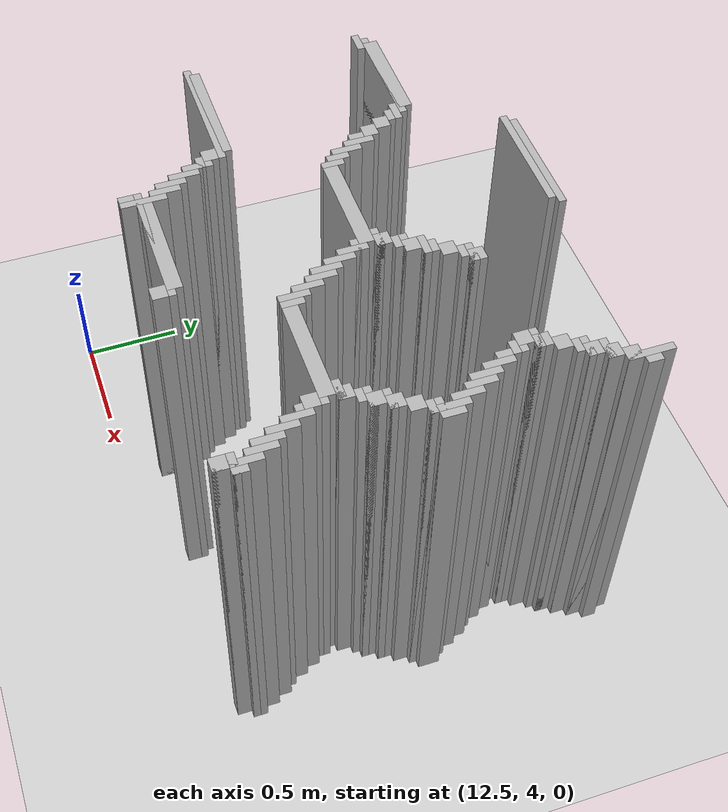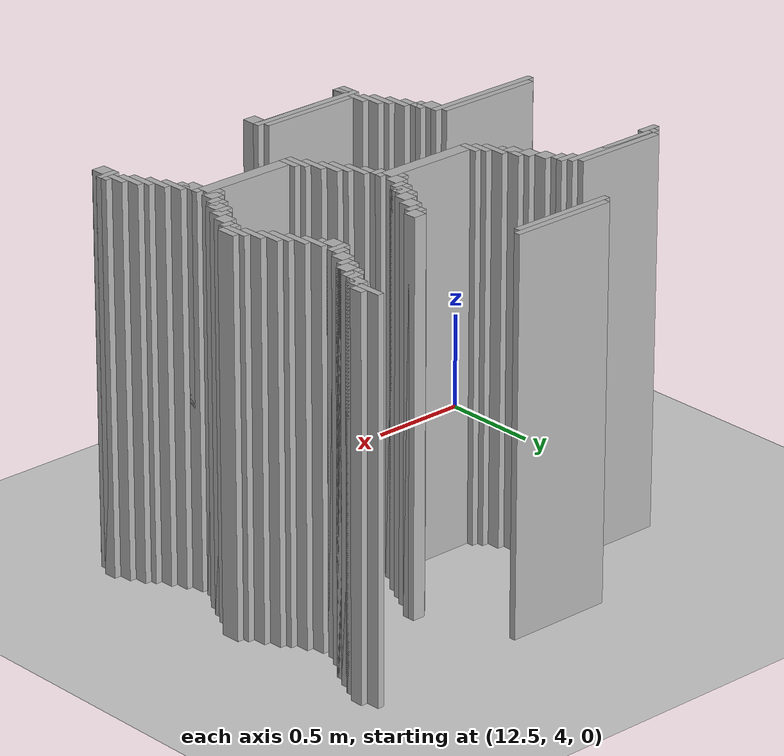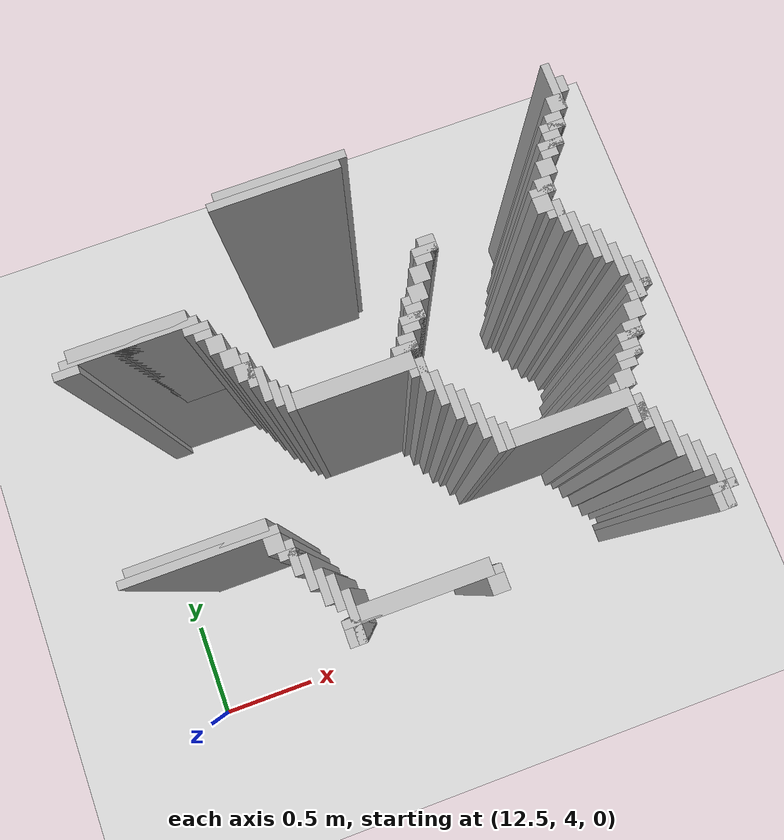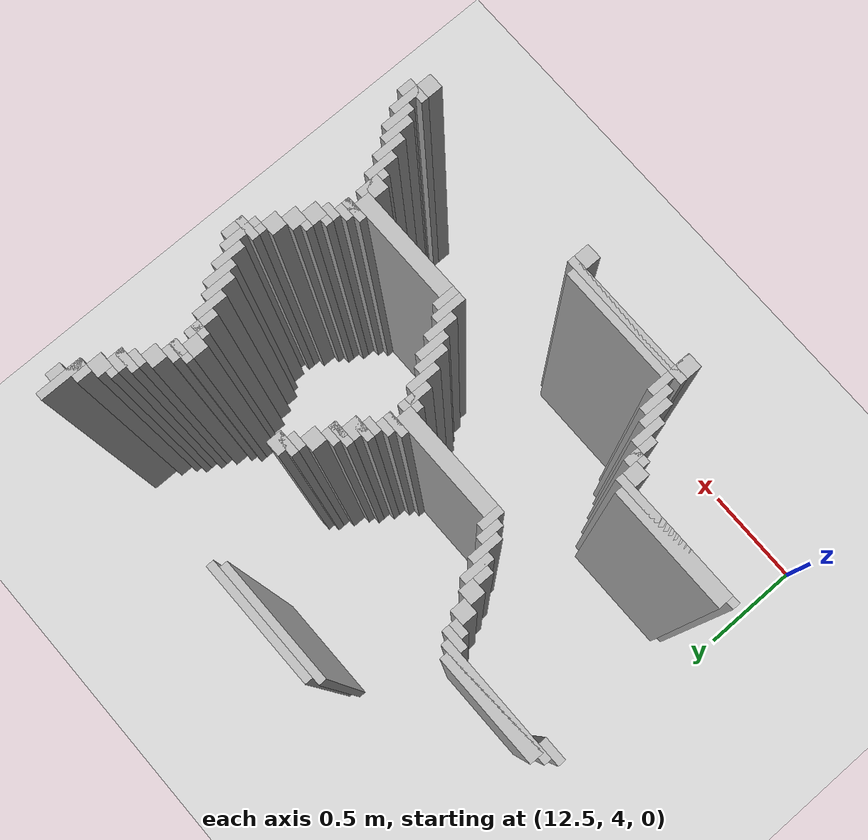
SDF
<sdf version="1.6">
 <world name="slam_world">
  <model name="ground_plane">
   <static>true</static>
   <link name="link">
    <collision name="collision">
     <geometry><plane><normal>0 0 1</normal><size>100 100</size></plane></geometry>
    </collision>
    <visual name="visual">
     <geometry><plane><normal>0 0 1</normal><size>100 100</size></plane></geometry>
     <material>
      <ambient>0.8 0.8 0.8 1</ambient>
      <diffuse>0.8 0.8 0.8 1</diffuse>
      <specular>0.8 0.8 0.8 1</specular>
     </material>
    </visual>
   </link>
  </model>
  <model name="wall_3852">
   <static>true</static>
   <pose>14.912993039443155 5.986078886310905 1.0 0 0 0</pose>
   <link name="link">
    <collision name="collision">
     <geometry><box><size>0.03480278422273782 0.2088167053364269 2.0</size></box></geometry>
    </collision>
    <visual name="visual">
     <geometry><box><size>0.03480278422273782 0.2088167053364269 2.0</size></box></geometry>
     <material><ambient>0.5 0.5 0.5 1</ambient><diffuse>0.7 0.7 0.7 1</diffuse></material>
    </visual>
   </link>
  </model>
  <model name="wall_3875">
   <static>true</static>
   <pose>13.747099767981437 6.003480278422273 1.0 0 0 0</pose>
   <link name="link">
    <collision name="collision">
     <geometry><box><size>0.5568445475638051 0.03480278422273782 2.0</size></box></geometry>
    </collision>
    <visual name="visual">
     <geometry><box><size>0.5568445475638051 0.03480278422273782 2.0</size></box></geometry>
     <material><ambient>0.5 0.5 0.5 1</ambient><diffuse>0.7 0.7 0.7 1</diffuse></material>
    </visual>
   </link>
  </model>
  <model name="wall_3876">
   <static>true</static>
   <pose>14.947795823665892 5.986078886310905 1.0 0 0 0</pose>
   <link name="link">
    <collision name="collision">
     <geometry><box><size>0.03480278422273782 0.06960556844547564 2.0</size></box></geometry>
    </collision>
    <visual name="visual">
     <geometry><box><size>0.03480278422273782 0.06960556844547564 2.0</size></box></geometry>
     <material><ambient>0.5 0.5 0.5 1</ambient><diffuse>0.7 0.7 0.7 1</diffuse></material>
    </visual>
   </link>
  </model>
  <model name="wall_3886">
   <static>true</static>
   <pose>13.7122969837587 5.968677494199536 1.0 0 0 0</pose>
   <link name="link">
    <collision name="collision">
     <geometry><box><size>0.5568445475638051 0.03480278422273782 2.0</size></box></geometry>
    </collision>
    <visual name="visual">
     <geometry><box><size>0.5568445475638051 0.03480278422273782 2.0</size></box></geometry>
     <material><ambient>0.5 0.5 0.5 1</ambient><diffuse>0.7 0.7 0.7 1</diffuse></material>
    </visual>
   </link>
  </model>
  <model name="wall_3897">
   <static>true</static>
   <pose>14.895591647331786 5.916473317865429 1.0 0 0 0</pose>
   <link name="link">
    <collision name="collision">
     <geometry><box><size>0.06960556844547564 0.06960556844547564 2.0</size></box></geometry>
    </collision>
    <visual name="visual">
     <geometry><box><size>0.06960556844547564 0.06960556844547564 2.0</size></box></geometry>
     <material><ambient>0.5 0.5 0.5 1</ambient><diffuse>0.7 0.7 0.7 1</diffuse></material>
    </visual>
   </link>
  </model>
  <model name="wall_3913">
   <static>true</static>
   <pose>14.860788863109049 5.846867749419953 1.0 0 0 0</pose>
   <link name="link">
    <collision name="collision">
     <geometry><box><size>0.06960556844547564 0.06960556844547564 2.0</size></box></geometry>
    </collision>
    <visual name="visual">
     <geometry><box><size>0.06960556844547564 0.06960556844547564 2.0</size></box></geometry>
     <material><ambient>0.5 0.5 0.5 1</ambient><diffuse>0.7 0.7 0.7 1</diffuse></material>
    </visual>
   </link>
  </model>
  <model name="wall_3924">
   <static>true</static>
   <pose>14.84338747099768 5.8294663573085845 1.0 0 0 0</pose>
   <link name="link">
    <collision name="collision">
     <geometry><box><size>0.10440835266821345 0.03480278422273782 2.0</size></box></geometry>
    </collision>
    <visual name="visual">
     <geometry><box><size>0.10440835266821345 0.03480278422273782 2.0</size></box></geometry>
     <material><ambient>0.5 0.5 0.5 1</ambient><diffuse>0.7 0.7 0.7 1</diffuse></material>
    </visual>
   </link>
  </model>
  <model name="wall_3935">
   <static>true</static>
   <pose>14.825986078886311 5.7772621809744775 1.0 0 0 0</pose>
   <link name="link">
    <collision name="collision">
     <geometry><box><size>0.06960556844547564 0.06960556844547564 2.0</size></box></geometry>
    </collision>
    <visual name="visual">
     <geometry><box><size>0.06960556844547564 0.06960556844547564 2.0</size></box></geometry>
     <material><ambient>0.5 0.5 0.5 1</ambient><diffuse>0.7 0.7 0.7 1</diffuse></material>
    </visual>
   </link>
  </model>
  <model name="wall_3946">
   <static>true</static>
   <pose>14.80858468677494 5.759860788863109 1.0 0 0 0</pose>
   <link name="link">
    <collision name="collision">
     <geometry><box><size>0.10440835266821345 0.03480278422273782 2.0</size></box></geometry>
    </collision>
    <visual name="visual">
     <geometry><box><size>0.10440835266821345 0.03480278422273782 2.0</size></box></geometry>
     <material><ambient>0.5 0.5 0.5 1</ambient><diffuse>0.7 0.7 0.7 1</diffuse></material>
    </visual>
   </link>
  </model>
  <model name="wall_3955">
   <static>true</static>
   <pose>14.791183294663572 5.725058004640371 1.0 0 0 0</pose>
   <link name="link">
    <collision name="collision">
     <geometry><box><size>0.06960556844547564 0.03480278422273782 2.0</size></box></geometry>
    </collision>
    <visual name="visual">
     <geometry><box><size>0.06960556844547564 0.03480278422273782 2.0</size></box></geometry>
     <material><ambient>0.5 0.5 0.5 1</ambient><diffuse>0.7 0.7 0.7 1</diffuse></material>
    </visual>
   </link>
  </model>
  <model name="wall_3966">
   <static>true</static>
   <pose>14.756380510440835 5.672853828306264 1.0 0 0 0</pose>
   <link name="link">
    <collision name="collision">
     <geometry><box><size>0.06960556844547564 0.06960556844547564 2.0</size></box></geometry>
    </collision>
    <visual name="visual">
     <geometry><box><size>0.06960556844547564 0.06960556844547564 2.0</size></box></geometry>
     <material><ambient>0.5 0.5 0.5 1</ambient><diffuse>0.7 0.7 0.7 1</diffuse></material>
    </visual>
   </link>
  </model>
  <model name="wall_3977">
   <static>true</static>
   <pose>14.721577726218097 5.603248259860789 1.0 0 0 0</pose>
   <link name="link">
    <collision name="collision">
     <geometry><box><size>0.06960556844547564 0.06960556844547564 2.0</size></box></geometry>
    </collision>
    <visual name="visual">
     <geometry><box><size>0.06960556844547564 0.06960556844547564 2.0</size></box></geometry>
     <material><ambient>0.5 0.5 0.5 1</ambient><diffuse>0.7 0.7 0.7 1</diffuse></material>
    </visual>
   </link>
  </model>
  <model name="wall_3989">
   <static>true</static>
   <pose>12.981438515081207 5.56844547563805 1.0 0 0 0</pose>
   <link name="link">
    <collision name="collision">
     <geometry><box><size>0.4872389791183295 0.06960556844547564 2.0</size></box></geometry>
    </collision>
    <visual name="visual">
     <geometry><box><size>0.4872389791183295 0.06960556844547564 2.0</size></box></geometry>
     <material><ambient>0.5 0.5 0.5 1</ambient><diffuse>0.7 0.7 0.7 1</diffuse></material>
    </visual>
   </link>
  </model>
  <model name="wall_3990">
   <static>true</static>
   <pose>14.704176334106728 5.58584686774942 1.0 0 0 0</pose>
   <link name="link">
    <collision name="collision">
     <geometry><box><size>0.10440835266821345 0.03480278422273782 2.0</size></box></geometry>
    </collision>
    <visual name="visual">
     <geometry><box><size>0.10440835266821345 0.03480278422273782 2.0</size></box></geometry>
     <material><ambient>0.5 0.5 0.5 1</ambient><diffuse>0.7 0.7 0.7 1</diffuse></material>
    </visual>
   </link>
  </model>
  <model name="wall_4000">
   <static>true</static>
   <pose>12.981438515081207 5.551044083526682 1.0 0 0 0</pose>
   <link name="link">
    <collision name="collision">
     <geometry><box><size>0.5568445475638051 0.03480278422273782 2.0</size></box></geometry>
    </collision>
    <visual name="visual">
     <geometry><box><size>0.5568445475638051 0.03480278422273782 2.0</size></box></geometry>
     <material><ambient>0.5 0.5 0.5 1</ambient><diffuse>0.7 0.7 0.7 1</diffuse></material>
    </visual>
   </link>
  </model>
  <model name="wall_4001">
   <static>true</static>
   <pose>14.199535962877029 5.533642691415313 1.0 0 0 0</pose>
   <link name="link">
    <collision name="collision">
     <geometry><box><size>0.06960556844547564 0.06960556844547564 2.0</size></box></geometry>
    </collision>
    <visual name="visual">
     <geometry><box><size>0.06960556844547564 0.06960556844547564 2.0</size></box></geometry>
     <material><ambient>0.5 0.5 0.5 1</ambient><diffuse>0.7 0.7 0.7 1</diffuse></material>
    </visual>
   </link>
  </model>
  <model name="wall_4002">
   <static>true</static>
   <pose>14.68677494199536 5.533642691415313 1.0 0 0 0</pose>
   <link name="link">
    <collision name="collision">
     <geometry><box><size>0.06960556844547564 0.06960556844547564 2.0</size></box></geometry>
    </collision>
    <visual name="visual">
     <geometry><box><size>0.06960556844547564 0.06960556844547564 2.0</size></box></geometry>
     <material><ambient>0.5 0.5 0.5 1</ambient><diffuse>0.7 0.7 0.7 1</diffuse></material>
    </visual>
   </link>
  </model>
  <model name="wall_4018">
   <static>true</static>
   <pose>12.720417633410673 5.516241299303944 1.0 0 0 0</pose>
   <link name="link">
    <collision name="collision">
     <geometry><box><size>0.10440835266821345 0.03480278422273782 2.0</size></box></geometry>
    </collision>
    <visual name="visual">
     <geometry><box><size>0.10440835266821345 0.03480278422273782 2.0</size></box></geometry>
     <material><ambient>0.5 0.5 0.5 1</ambient><diffuse>0.7 0.7 0.7 1</diffuse></material>
    </visual>
   </link>
  </model>
  <model name="wall_4019">
   <static>true</static>
   <pose>13.24245939675174 5.516241299303944 1.0 0 0 0</pose>
   <link name="link">
    <collision name="collision">
     <geometry><box><size>0.10440835266821345 0.03480278422273782 2.0</size></box></geometry>
    </collision>
    <visual name="visual">
     <geometry><box><size>0.10440835266821345 0.03480278422273782 2.0</size></box></geometry>
     <material><ambient>0.5 0.5 0.5 1</ambient><diffuse>0.7 0.7 0.7 1</diffuse></material>
    </visual>
   </link>
  </model>
  <model name="wall_4020">
   <static>true</static>
   <pose>14.18213457076566 5.516241299303944 1.0 0 0 0</pose>
   <link name="link">
    <collision name="collision">
     <geometry><box><size>0.10440835266821345 0.03480278422273782 2.0</size></box></geometry>
    </collision>
    <visual name="visual">
     <geometry><box><size>0.10440835266821345 0.03480278422273782 2.0</size></box></geometry>
     <material><ambient>0.5 0.5 0.5 1</ambient><diffuse>0.7 0.7 0.7 1</diffuse></material>
    </visual>
   </link>
  </model>
  <model name="wall_4021">
   <static>true</static>
   <pose>14.738979118329466 5.464037122969837 1.0 0 0 0</pose>
   <link name="link">
    <collision name="collision">
     <geometry><box><size>0.03480278422273782 0.13921113689095127 2.0</size></box></geometry>
    </collision>
    <visual name="visual">
     <geometry><box><size>0.03480278422273782 0.13921113689095127 2.0</size></box></geometry>
     <material><ambient>0.5 0.5 0.5 1</ambient><diffuse>0.7 0.7 0.7 1</diffuse></material>
    </visual>
   </link>
  </model>
  <model name="wall_4034">
   <static>true</static>
   <pose>13.259860788863108 5.481438515081206 1.0 0 0 0</pose>
   <link name="link">
    <collision name="collision">
     <geometry><box><size>0.06960556844547564 0.03480278422273782 2.0</size></box></geometry>
    </collision>
    <visual name="visual">
     <geometry><box><size>0.06960556844547564 0.03480278422273782 2.0</size></box></geometry>
     <material><ambient>0.5 0.5 0.5 1</ambient><diffuse>0.7 0.7 0.7 1</diffuse></material>
    </visual>
   </link>
  </model>
  <model name="wall_4035">
   <static>true</static>
   <pose>14.164733178654291 5.481438515081206 1.0 0 0 0</pose>
   <link name="link">
    <collision name="collision">
     <geometry><box><size>0.06960556844547564 0.03480278422273782 2.0</size></box></geometry>
    </collision>
    <visual name="visual">
     <geometry><box><size>0.06960556844547564 0.03480278422273782 2.0</size></box></geometry>
     <material><ambient>0.5 0.5 0.5 1</ambient><diffuse>0.7 0.7 0.7 1</diffuse></material>
    </visual>
   </link>
  </model>
  <model name="wall_4036">
   <static>true</static>
   <pose>14.721577726218097 5.481438515081206 1.0 0 0 0</pose>
   <link name="link">
    <collision name="collision">
     <geometry><box><size>0.06960556844547564 0.03480278422273782 2.0</size></box></geometry>
    </collision>
    <visual name="visual">
     <geometry><box><size>0.06960556844547564 0.03480278422273782 2.0</size></box></geometry>
     <material><ambient>0.5 0.5 0.5 1</ambient><diffuse>0.7 0.7 0.7 1</diffuse></material>
    </visual>
   </link>
  </model>
  <model name="wall_4049">
   <static>true</static>
   <pose>13.294663573085847 5.4292343387471 1.0 0 0 0</pose>
   <link name="link">
    <collision name="collision">
     <geometry><box><size>0.06960556844547564 0.06960556844547564 2.0</size></box></geometry>
    </collision>
    <visual name="visual">
     <geometry><box><size>0.06960556844547564 0.06960556844547564 2.0</size></box></geometry>
     <material><ambient>0.5 0.5 0.5 1</ambient><diffuse>0.7 0.7 0.7 1</diffuse></material>
    </visual>
   </link>
  </model>
  <model name="wall_4050">
   <static>true</static>
   <pose>14.129930394431554 5.4292343387471 1.0 0 0 0</pose>
   <link name="link">
    <collision name="collision">
     <geometry><box><size>0.06960556844547564 0.06960556844547564 2.0</size></box></geometry>
    </collision>
    <visual name="visual">
     <geometry><box><size>0.06960556844547564 0.06960556844547564 2.0</size></box></geometry>
     <material><ambient>0.5 0.5 0.5 1</ambient><diffuse>0.7 0.7 0.7 1</diffuse></material>
    </visual>
   </link>
  </model>
  <model name="wall_4051">
   <static>true</static>
   <pose>14.773781902552203 5.3944315545243615 1.0 0 0 0</pose>
   <link name="link">
    <collision name="collision">
     <geometry><box><size>0.03480278422273782 0.13921113689095127 2.0</size></box></geometry>
    </collision>
    <visual name="visual">
     <geometry><box><size>0.03480278422273782 0.13921113689095127 2.0</size></box></geometry>
     <material><ambient>0.5 0.5 0.5 1</ambient><diffuse>0.7 0.7 0.7 1</diffuse></material>
    </visual>
   </link>
  </model>
  <model name="wall_4064">
   <static>true</static>
   <pose>13.329466357308585 5.359628770301624 1.0 0 0 0</pose>
   <link name="link">
    <collision name="collision">
     <geometry><box><size>0.06960556844547564 0.06960556844547564 2.0</size></box></geometry>
    </collision>
    <visual name="visual">
     <geometry><box><size>0.06960556844547564 0.06960556844547564 2.0</size></box></geometry>
     <material><ambient>0.5 0.5 0.5 1</ambient><diffuse>0.7 0.7 0.7 1</diffuse></material>
    </visual>
   </link>
  </model>
  <model name="wall_4065">
   <static>true</static>
   <pose>14.095127610208817 5.359628770301624 1.0 0 0 0</pose>
   <link name="link">
    <collision name="collision">
     <geometry><box><size>0.06960556844547564 0.06960556844547564 2.0</size></box></geometry>
    </collision>
    <visual name="visual">
     <geometry><box><size>0.06960556844547564 0.06960556844547564 2.0</size></box></geometry>
     <material><ambient>0.5 0.5 0.5 1</ambient><diffuse>0.7 0.7 0.7 1</diffuse></material>
    </visual>
   </link>
  </model>
  <model name="wall_4066">
   <static>true</static>
   <pose>14.80858468677494 5.324825986078886 1.0 0 0 0</pose>
   <link name="link">
    <collision name="collision">
     <geometry><box><size>0.03480278422273782 0.13921113689095127 2.0</size></box></geometry>
    </collision>
    <visual name="visual">
     <geometry><box><size>0.03480278422273782 0.13921113689095127 2.0</size></box></geometry>
     <material><ambient>0.5 0.5 0.5 1</ambient><diffuse>0.7 0.7 0.7 1</diffuse></material>
    </visual>
   </link>
  </model>
  <model name="wall_4079">
   <static>true</static>
   <pose>13.38167053364269 5.290023201856148 1.0 0 0 0</pose>
   <link name="link">
    <collision name="collision">
     <geometry><box><size>0.03480278422273782 0.13921113689095127 2.0</size></box></geometry>
    </collision>
    <visual name="visual">
     <geometry><box><size>0.03480278422273782 0.13921113689095127 2.0</size></box></geometry>
     <material><ambient>0.5 0.5 0.5 1</ambient><diffuse>0.7 0.7 0.7 1</diffuse></material>
    </visual>
   </link>
  </model>
  <model name="wall_4080">
   <static>true</static>
   <pose>14.077726218097448 5.342227378190255 1.0 0 0 0</pose>
   <link name="link">
    <collision name="collision">
     <geometry><box><size>0.10440835266821345 0.03480278422273782 2.0</size></box></geometry>
    </collision>
    <visual name="visual">
     <geometry><box><size>0.10440835266821345 0.03480278422273782 2.0</size></box></geometry>
     <material><ambient>0.5 0.5 0.5 1</ambient><diffuse>0.7 0.7 0.7 1</diffuse></material>
    </visual>
   </link>
  </model>
  <model name="wall_4081">
   <static>true</static>
   <pose>14.84338747099768 5.290023201856148 1.0 0 0 0</pose>
   <link name="link">
    <collision name="collision">
     <geometry><box><size>0.03480278422273782 0.13921113689095127 2.0</size></box></geometry>
    </collision>
    <visual name="visual">
     <geometry><box><size>0.03480278422273782 0.13921113689095127 2.0</size></box></geometry>
     <material><ambient>0.5 0.5 0.5 1</ambient><diffuse>0.7 0.7 0.7 1</diffuse></material>
    </visual>
   </link>
  </model>
  <model name="wall_4091">
   <static>true</static>
   <pose>13.364269141531322 5.290023201856148 1.0 0 0 0</pose>
   <link name="link">
    <collision name="collision">
     <geometry><box><size>0.06960556844547564 0.06960556844547564 2.0</size></box></geometry>
    </collision>
    <visual name="visual">
     <geometry><box><size>0.06960556844547564 0.06960556844547564 2.0</size></box></geometry>
     <material><ambient>0.5 0.5 0.5 1</ambient><diffuse>0.7 0.7 0.7 1</diffuse></material>
    </visual>
   </link>
  </model>
  <model name="wall_4092">
   <static>true</static>
   <pose>14.06032482598608 5.290023201856148 1.0 0 0 0</pose>
   <link name="link">
    <collision name="collision">
     <geometry><box><size>0.06960556844547564 0.06960556844547564 2.0</size></box></geometry>
    </collision>
    <visual name="visual">
     <geometry><box><size>0.06960556844547564 0.06960556844547564 2.0</size></box></geometry>
     <material><ambient>0.5 0.5 0.5 1</ambient><diffuse>0.7 0.7 0.7 1</diffuse></material>
    </visual>
   </link>
  </model>
  <model name="wall_4105">
   <static>true</static>
   <pose>13.416473317865428 5.220417633410673 1.0 0 0 0</pose>
   <link name="link">
    <collision name="collision">
     <geometry><box><size>0.03480278422273782 0.13921113689095127 2.0</size></box></geometry>
    </collision>
    <visual name="visual">
     <geometry><box><size>0.03480278422273782 0.13921113689095127 2.0</size></box></geometry>
     <material><ambient>0.5 0.5 0.5 1</ambient><diffuse>0.7 0.7 0.7 1</diffuse></material>
    </visual>
   </link>
  </model>
  <model name="wall_4106">
   <static>true</static>
   <pose>14.042923433874709 5.27262180974478 1.0 0 0 0</pose>
   <link name="link">
    <collision name="collision">
     <geometry><box><size>0.10440835266821345 0.03480278422273782 2.0</size></box></geometry>
    </collision>
    <visual name="visual">
     <geometry><box><size>0.10440835266821345 0.03480278422273782 2.0</size></box></geometry>
     <material><ambient>0.5 0.5 0.5 1</ambient><diffuse>0.7 0.7 0.7 1</diffuse></material>
    </visual>
   </link>
  </model>
  <model name="wall_4107">
   <static>true</static>
   <pose>14.878190255220417 5.220417633410673 1.0 0 0 0</pose>
   <link name="link">
    <collision name="collision">
     <geometry><box><size>0.03480278422273782 0.13921113689095127 2.0</size></box></geometry>
    </collision>
    <visual name="visual">
     <geometry><box><size>0.03480278422273782 0.13921113689095127 2.0</size></box></geometry>
     <material><ambient>0.5 0.5 0.5 1</ambient><diffuse>0.7 0.7 0.7 1</diffuse></material>
    </visual>
   </link>
  </model>
  <model name="wall_4115">
   <static>true</static>
   <pose>14.02552204176334 5.237819025522041 1.0 0 0 0</pose>
   <link name="link">
    <collision name="collision">
     <geometry><box><size>0.06960556844547564 0.03480278422273782 2.0</size></box></geometry>
    </collision>
    <visual name="visual">
     <geometry><box><size>0.06960556844547564 0.03480278422273782 2.0</size></box></geometry>
     <material><ambient>0.5 0.5 0.5 1</ambient><diffuse>0.7 0.7 0.7 1</diffuse></material>
    </visual>
   </link>
  </model>
  <model name="wall_4128">
   <static>true</static>
   <pose>13.451276102088167 5.168213457076566 1.0 0 0 0</pose>
   <link name="link">
    <collision name="collision">
     <geometry><box><size>0.03480278422273782 0.10440835266821345 2.0</size></box></geometry>
    </collision>
    <visual name="visual">
     <geometry><box><size>0.03480278422273782 0.10440835266821345 2.0</size></box></geometry>
     <material><ambient>0.5 0.5 0.5 1</ambient><diffuse>0.7 0.7 0.7 1</diffuse></material>
    </visual>
   </link>
  </model>
  <model name="wall_4129">
   <static>true</static>
   <pose>13.990719257540603 5.185614849187935 1.0 0 0 0</pose>
   <link name="link">
    <collision name="collision">
     <geometry><box><size>0.06960556844547564 0.06960556844547564 2.0</size></box></geometry>
    </collision>
    <visual name="visual">
     <geometry><box><size>0.06960556844547564 0.06960556844547564 2.0</size></box></geometry>
     <material><ambient>0.5 0.5 0.5 1</ambient><diffuse>0.7 0.7 0.7 1</diffuse></material>
    </visual>
   </link>
  </model>
  <model name="wall_4130">
   <static>true</static>
   <pose>14.912993039443155 5.133410672853828 1.0 0 0 0</pose>
   <link name="link">
    <collision name="collision">
     <geometry><box><size>0.03480278422273782 0.17401392111368907 2.0</size></box></geometry>
    </collision>
    <visual name="visual">
     <geometry><box><size>0.03480278422273782 0.17401392111368907 2.0</size></box></geometry>
     <material><ambient>0.5 0.5 0.5 1</ambient><diffuse>0.7 0.7 0.7 1</diffuse></material>
    </visual>
   </link>
  </model>
  <model name="wall_4143">
   <static>true</static>
   <pose>13.486078886310905 5.133410672853828 1.0 0 0 0</pose>
   <link name="link">
    <collision name="collision">
     <geometry><box><size>0.03480278422273782 0.10440835266821345 2.0</size></box></geometry>
    </collision>
    <visual name="visual">
     <geometry><box><size>0.03480278422273782 0.10440835266821345 2.0</size></box></geometry>
     <material><ambient>0.5 0.5 0.5 1</ambient><diffuse>0.7 0.7 0.7 1</diffuse></material>
    </visual>
   </link>
  </model>
  <model name="wall_4144">
   <static>true</static>
   <pose>13.973317865429234 5.168213457076566 1.0 0 0 0</pose>
   <link name="link">
    <collision name="collision">
     <geometry><box><size>0.10440835266821345 0.03480278422273782 2.0</size></box></geometry>
    </collision>
    <visual name="visual">
     <geometry><box><size>0.10440835266821345 0.03480278422273782 2.0</size></box></geometry>
     <material><ambient>0.5 0.5 0.5 1</ambient><diffuse>0.7 0.7 0.7 1</diffuse></material>
    </visual>
   </link>
  </model>
  <model name="wall_4145">
   <static>true</static>
   <pose>14.947795823665892 5.133410672853828 1.0 0 0 0</pose>
   <link name="link">
    <collision name="collision">
     <geometry><box><size>0.03480278422273782 0.10440835266821345 2.0</size></box></geometry>
    </collision>
    <visual name="visual">
     <geometry><box><size>0.03480278422273782 0.10440835266821345 2.0</size></box></geometry>
     <material><ambient>0.5 0.5 0.5 1</ambient><diffuse>0.7 0.7 0.7 1</diffuse></material>
    </visual>
   </link>
  </model>
  <model name="wall_4156">
   <static>true</static>
   <pose>13.747099767981437 5.1160092807424595 1.0 0 0 0</pose>
   <link name="link">
    <collision name="collision">
     <geometry><box><size>0.4872389791183295 0.06960556844547564 2.0</size></box></geometry>
    </collision>
    <visual name="visual">
     <geometry><box><size>0.4872389791183295 0.06960556844547564 2.0</size></box></geometry>
     <material><ambient>0.5 0.5 0.5 1</ambient><diffuse>0.7 0.7 0.7 1</diffuse></material>
    </visual>
   </link>
  </model>
  <model name="wall_4168">
   <static>true</static>
   <pose>14.008120649651971 5.046403712296984 1.0 0 0 0</pose>
   <link name="link">
    <collision name="collision">
     <geometry><box><size>0.03480278422273782 0.13921113689095127 2.0</size></box></geometry>
    </collision>
    <visual name="visual">
     <geometry><box><size>0.03480278422273782 0.13921113689095127 2.0</size></box></geometry>
     <material><ambient>0.5 0.5 0.5 1</ambient><diffuse>0.7 0.7 0.7 1</diffuse></material>
    </visual>
   </link>
  </model>
  <model name="wall_4169">
   <static>true</static>
   <pose>14.912993039443155 5.09860788863109 1.0 0 0 0</pose>
   <link name="link">
    <collision name="collision">
     <geometry><box><size>0.10440835266821345 0.03480278422273782 2.0</size></box></geometry>
    </collision>
    <visual name="visual">
     <geometry><box><size>0.10440835266821345 0.03480278422273782 2.0</size></box></geometry>
     <material><ambient>0.5 0.5 0.5 1</ambient><diffuse>0.7 0.7 0.7 1</diffuse></material>
    </visual>
   </link>
  </model>
  <model name="wall_4183">
   <static>true</static>
   <pose>13.990719257540603 5.0638051044083525 1.0 0 0 0</pose>
   <link name="link">
    <collision name="collision">
     <geometry><box><size>0.06960556844547564 0.03480278422273782 2.0</size></box></geometry>
    </collision>
    <visual name="visual">
     <geometry><box><size>0.06960556844547564 0.03480278422273782 2.0</size></box></geometry>
     <material><ambient>0.5 0.5 0.5 1</ambient><diffuse>0.7 0.7 0.7 1</diffuse></material>
    </visual>
   </link>
  </model>
  <model name="wall_4184">
   <static>true</static>
   <pose>14.895591647331786 5.0638051044083525 1.0 0 0 0</pose>
   <link name="link">
    <collision name="collision">
     <geometry><box><size>0.06960556844547564 0.03480278422273782 2.0</size></box></geometry>
    </collision>
    <visual name="visual">
     <geometry><box><size>0.06960556844547564 0.03480278422273782 2.0</size></box></geometry>
     <material><ambient>0.5 0.5 0.5 1</ambient><diffuse>0.7 0.7 0.7 1</diffuse></material>
    </visual>
   </link>
  </model>
  <model name="wall_4198">
   <static>true</static>
   <pose>14.042923433874709 4.976798143851508 1.0 0 0 0</pose>
   <link name="link">
    <collision name="collision">
     <geometry><box><size>0.03480278422273782 0.13921113689095127 2.0</size></box></geometry>
    </collision>
    <visual name="visual">
     <geometry><box><size>0.03480278422273782 0.13921113689095127 2.0</size></box></geometry>
     <material><ambient>0.5 0.5 0.5 1</ambient><diffuse>0.7 0.7 0.7 1</diffuse></material>
    </visual>
   </link>
  </model>
  <model name="wall_4199">
   <static>true</static>
   <pose>14.860788863109049 5.0116009280742455 1.0 0 0 0</pose>
   <link name="link">
    <collision name="collision">
     <geometry><box><size>0.06960556844547564 0.06960556844547564 2.0</size></box></geometry>
    </collision>
    <visual name="visual">
     <geometry><box><size>0.06960556844547564 0.06960556844547564 2.0</size></box></geometry>
     <material><ambient>0.5 0.5 0.5 1</ambient><diffuse>0.7 0.7 0.7 1</diffuse></material>
    </visual>
   </link>
  </model>
  <model name="wall_4213">
   <static>true</static>
   <pose>14.077726218097448 4.907192575406032 1.0 0 0 0</pose>
   <link name="link">
    <collision name="collision">
     <geometry><box><size>0.03480278422273782 0.13921113689095127 2.0</size></box></geometry>
    </collision>
    <visual name="visual">
     <geometry><box><size>0.03480278422273782 0.13921113689095127 2.0</size></box></geometry>
     <material><ambient>0.5 0.5 0.5 1</ambient><diffuse>0.7 0.7 0.7 1</diffuse></material>
    </visual>
   </link>
  </model>
  <model name="wall_4214">
   <static>true</static>
   <pose>14.825986078886311 4.94199535962877 1.0 0 0 0</pose>
   <link name="link">
    <collision name="collision">
     <geometry><box><size>0.06960556844547564 0.06960556844547564 2.0</size></box></geometry>
    </collision>
    <visual name="visual">
     <geometry><box><size>0.06960556844547564 0.06960556844547564 2.0</size></box></geometry>
     <material><ambient>0.5 0.5 0.5 1</ambient><diffuse>0.7 0.7 0.7 1</diffuse></material>
    </visual>
   </link>
  </model>
  <model name="wall_4228">
   <static>true</static>
   <pose>14.112529002320185 4.872389791183294 1.0 0 0 0</pose>
   <link name="link">
    <collision name="collision">
     <geometry><box><size>0.03480278422273782 0.13921113689095127 2.0</size></box></geometry>
    </collision>
    <visual name="visual">
     <geometry><box><size>0.03480278422273782 0.13921113689095127 2.0</size></box></geometry>
     <material><ambient>0.5 0.5 0.5 1</ambient><diffuse>0.7 0.7 0.7 1</diffuse></material>
    </visual>
   </link>
  </model>
  <model name="wall_4229">
   <static>true</static>
   <pose>14.80858468677494 4.924593967517401 1.0 0 0 0</pose>
   <link name="link">
    <collision name="collision">
     <geometry><box><size>0.10440835266821345 0.03480278422273782 2.0</size></box></geometry>
    </collision>
    <visual name="visual">
     <geometry><box><size>0.10440835266821345 0.03480278422273782 2.0</size></box></geometry>
     <material><ambient>0.5 0.5 0.5 1</ambient><diffuse>0.7 0.7 0.7 1</diffuse></material>
    </visual>
   </link>
  </model>
  <model name="wall_4240">
   <static>true</static>
   <pose>14.791183294663572 4.872389791183294 1.0 0 0 0</pose>
   <link name="link">
    <collision name="collision">
     <geometry><box><size>0.06960556844547564 0.06960556844547564 2.0</size></box></geometry>
    </collision>
    <visual name="visual">
     <geometry><box><size>0.06960556844547564 0.06960556844547564 2.0</size></box></geometry>
     <material><ambient>0.5 0.5 0.5 1</ambient><diffuse>0.7 0.7 0.7 1</diffuse></material>
    </visual>
   </link>
  </model>
  <model name="wall_4254">
   <static>true</static>
   <pose>14.147331786542923 4.802784222737819 1.0 0 0 0</pose>
   <link name="link">
    <collision name="collision">
     <geometry><box><size>0.03480278422273782 0.13921113689095127 2.0</size></box></geometry>
    </collision>
    <visual name="visual">
     <geometry><box><size>0.03480278422273782 0.13921113689095127 2.0</size></box></geometry>
     <material><ambient>0.5 0.5 0.5 1</ambient><diffuse>0.7 0.7 0.7 1</diffuse></material>
    </visual>
   </link>
  </model>
  <model name="wall_4255">
   <static>true</static>
   <pose>14.773781902552203 4.854988399071925 1.0 0 0 0</pose>
   <link name="link">
    <collision name="collision">
     <geometry><box><size>0.10440835266821345 0.03480278422273782 2.0</size></box></geometry>
    </collision>
    <visual name="visual">
     <geometry><box><size>0.10440835266821345 0.03480278422273782 2.0</size></box></geometry>
     <material><ambient>0.5 0.5 0.5 1</ambient><diffuse>0.7 0.7 0.7 1</diffuse></material>
    </visual>
   </link>
  </model>
  <model name="wall_4264">
   <static>true</static>
   <pose>14.756380510440835 4.820185614849188 1.0 0 0 0</pose>
   <link name="link">
    <collision name="collision">
     <geometry><box><size>0.06960556844547564 0.03480278422273782 2.0</size></box></geometry>
    </collision>
    <visual name="visual">
     <geometry><box><size>0.06960556844547564 0.03480278422273782 2.0</size></box></geometry>
     <material><ambient>0.5 0.5 0.5 1</ambient><diffuse>0.7 0.7 0.7 1</diffuse></material>
    </visual>
   </link>
  </model>
  <model name="wall_4278">
   <static>true</static>
   <pose>14.18213457076566 4.7331786542923435 1.0 0 0 0</pose>
   <link name="link">
    <collision name="collision">
     <geometry><box><size>0.03480278422273782 0.13921113689095127 2.0</size></box></geometry>
    </collision>
    <visual name="visual">
     <geometry><box><size>0.03480278422273782 0.13921113689095127 2.0</size></box></geometry>
     <material><ambient>0.5 0.5 0.5 1</ambient><diffuse>0.7 0.7 0.7 1</diffuse></material>
    </visual>
   </link>
  </model>
  <model name="wall_4279">
   <static>true</static>
   <pose>14.721577726218097 4.767981438515081 1.0 0 0 0</pose>
   <link name="link">
    <collision name="collision">
     <geometry><box><size>0.06960556844547564 0.06960556844547564 2.0</size></box></geometry>
    </collision>
    <visual name="visual">
     <geometry><box><size>0.06960556844547564 0.06960556844547564 2.0</size></box></geometry>
     <material><ambient>0.5 0.5 0.5 1</ambient><diffuse>0.7 0.7 0.7 1</diffuse></material>
    </visual>
   </link>
  </model>
  <model name="wall_4290">
   <static>true</static>
   <pose>14.2169373549884 4.715777262180974 1.0 0 0 0</pose>
   <link name="link">
    <collision name="collision">
     <geometry><box><size>0.03480278422273782 0.10440835266821345 2.0</size></box></geometry>
    </collision>
    <visual name="visual">
     <geometry><box><size>0.03480278422273782 0.10440835266821345 2.0</size></box></geometry>
     <material><ambient>0.5 0.5 0.5 1</ambient><diffuse>0.7 0.7 0.7 1</diffuse></material>
    </visual>
   </link>
  </model>
  <model name="wall_4291">
   <static>true</static>
   <pose>14.704176334106728 4.750580046403712 1.0 0 0 0</pose>
   <link name="link">
    <collision name="collision">
     <geometry><box><size>0.10440835266821345 0.03480278422273782 2.0</size></box></geometry>
    </collision>
    <visual name="visual">
     <geometry><box><size>0.10440835266821345 0.03480278422273782 2.0</size></box></geometry>
     <material><ambient>0.5 0.5 0.5 1</ambient><diffuse>0.7 0.7 0.7 1</diffuse></material>
    </visual>
   </link>
  </model>
  <model name="wall_4302">
   <static>true</static>
   <pose>12.981438515081207 4.698375870069605 1.0 0 0 0</pose>
   <link name="link">
    <collision name="collision">
     <geometry><box><size>0.5568445475638051 0.06960556844547564 2.0</size></box></geometry>
    </collision>
    <visual name="visual">
     <geometry><box><size>0.5568445475638051 0.06960556844547564 2.0</size></box></geometry>
     <material><ambient>0.5 0.5 0.5 1</ambient><diffuse>0.7 0.7 0.7 1</diffuse></material>
    </visual>
   </link>
  </model>
  <model name="wall_4303">
   <static>true</static>
   <pose>14.477958236658932 4.698375870069605 1.0 0 0 0</pose>
   <link name="link">
    <collision name="collision">
     <geometry><box><size>0.4872389791183295 0.06960556844547564 2.0</size></box></geometry>
    </collision>
    <visual name="visual">
     <geometry><box><size>0.4872389791183295 0.06960556844547564 2.0</size></box></geometry>
     <material><ambient>0.5 0.5 0.5 1</ambient><diffuse>0.7 0.7 0.7 1</diffuse></material>
    </visual>
   </link>
  </model>
  <model name="wall_4313">
   <static>true</static>
   <pose>12.981438515081207 4.6809744779582365 1.0 0 0 0</pose>
   <link name="link">
    <collision name="collision">
     <geometry><box><size>0.6264501160092807 0.03480278422273782 2.0</size></box></geometry>
    </collision>
    <visual name="visual">
     <geometry><box><size>0.6264501160092807 0.03480278422273782 2.0</size></box></geometry>
     <material><ambient>0.5 0.5 0.5 1</ambient><diffuse>0.7 0.7 0.7 1</diffuse></material>
    </visual>
   </link>
  </model>
  <model name="wall_4314">
   <static>true</static>
   <pose>14.738979118329466 4.6287703016241295 1.0 0 0 0</pose>
   <link name="link">
    <collision name="collision">
     <geometry><box><size>0.03480278422273782 0.13921113689095127 2.0</size></box></geometry>
    </collision>
    <visual name="visual">
     <geometry><box><size>0.03480278422273782 0.13921113689095127 2.0</size></box></geometry>
     <material><ambient>0.5 0.5 0.5 1</ambient><diffuse>0.7 0.7 0.7 1</diffuse></material>
    </visual>
   </link>
  </model>
  <model name="wall_4326">
   <static>true</static>
   <pose>13.259860788863108 4.6287703016241295 1.0 0 0 0</pose>
   <link name="link">
    <collision name="collision">
     <geometry><box><size>0.06960556844547564 0.06960556844547564 2.0</size></box></geometry>
    </collision>
    <visual name="visual">
     <geometry><box><size>0.06960556844547564 0.06960556844547564 2.0</size></box></geometry>
     <material><ambient>0.5 0.5 0.5 1</ambient><diffuse>0.7 0.7 0.7 1</diffuse></material>
    </visual>
   </link>
  </model>
  <model name="wall_4327">
   <static>true</static>
   <pose>14.721577726218097 4.6287703016241295 1.0 0 0 0</pose>
   <link name="link">
    <collision name="collision">
     <geometry><box><size>0.06960556844547564 0.06960556844547564 2.0</size></box></geometry>
    </collision>
    <visual name="visual">
     <geometry><box><size>0.06960556844547564 0.06960556844547564 2.0</size></box></geometry>
     <material><ambient>0.5 0.5 0.5 1</ambient><diffuse>0.7 0.7 0.7 1</diffuse></material>
    </visual>
   </link>
  </model>
  <model name="wall_4339">
   <static>true</static>
   <pose>13.312064965197216 4.559164733178654 1.0 0 0 0</pose>
   <link name="link">
    <collision name="collision">
     <geometry><box><size>0.03480278422273782 0.13921113689095127 2.0</size></box></geometry>
    </collision>
    <visual name="visual">
     <geometry><box><size>0.03480278422273782 0.13921113689095127 2.0</size></box></geometry>
     <material><ambient>0.5 0.5 0.5 1</ambient><diffuse>0.7 0.7 0.7 1</diffuse></material>
    </visual>
   </link>
  </model>
  <model name="wall_4340">
   <static>true</static>
   <pose>14.773781902552203 4.559164733178654 1.0 0 0 0</pose>
   <link name="link">
    <collision name="collision">
     <geometry><box><size>0.03480278422273782 0.13921113689095127 2.0</size></box></geometry>
    </collision>
    <visual name="visual">
     <geometry><box><size>0.03480278422273782 0.13921113689095127 2.0</size></box></geometry>
     <material><ambient>0.5 0.5 0.5 1</ambient><diffuse>0.7 0.7 0.7 1</diffuse></material>
    </visual>
   </link>
  </model>
  <model name="wall_4348">
   <static>true</static>
   <pose>13.294663573085847 4.576566125290023 1.0 0 0 0</pose>
   <link name="link">
    <collision name="collision">
     <geometry><box><size>0.06960556844547564 0.03480278422273782 2.0</size></box></geometry>
    </collision>
    <visual name="visual">
     <geometry><box><size>0.06960556844547564 0.03480278422273782 2.0</size></box></geometry>
     <material><ambient>0.5 0.5 0.5 1</ambient><diffuse>0.7 0.7 0.7 1</diffuse></material>
    </visual>
   </link>
  </model>
  <model name="wall_4360">
   <static>true</static>
   <pose>13.346867749419953 4.489559164733178 1.0 0 0 0</pose>
   <link name="link">
    <collision name="collision">
     <geometry><box><size>0.03480278422273782 0.13921113689095127 2.0</size></box></geometry>
    </collision>
    <visual name="visual">
     <geometry><box><size>0.03480278422273782 0.13921113689095127 2.0</size></box></geometry>
     <material><ambient>0.5 0.5 0.5 1</ambient><diffuse>0.7 0.7 0.7 1</diffuse></material>
    </visual>
   </link>
  </model>
  <model name="wall_4361">
   <static>true</static>
   <pose>14.80858468677494 4.489559164733178 1.0 0 0 0</pose>
   <link name="link">
    <collision name="collision">
     <geometry><box><size>0.03480278422273782 0.13921113689095127 2.0</size></box></geometry>
    </collision>
    <visual name="visual">
     <geometry><box><size>0.03480278422273782 0.13921113689095127 2.0</size></box></geometry>
     <material><ambient>0.5 0.5 0.5 1</ambient><diffuse>0.7 0.7 0.7 1</diffuse></material>
    </visual>
   </link>
  </model>
  <model name="wall_4373">
   <static>true</static>
   <pose>13.38167053364269 4.419953596287703 1.0 0 0 0</pose>
   <link name="link">
    <collision name="collision">
     <geometry><box><size>0.03480278422273782 0.13921113689095127 2.0</size></box></geometry>
    </collision>
    <visual name="visual">
     <geometry><box><size>0.03480278422273782 0.13921113689095127 2.0</size></box></geometry>
     <material><ambient>0.5 0.5 0.5 1</ambient><diffuse>0.7 0.7 0.7 1</diffuse></material>
    </visual>
   </link>
  </model>
  <model name="wall_4374">
   <static>true</static>
   <pose>14.84338747099768 4.419953596287703 1.0 0 0 0</pose>
   <link name="link">
    <collision name="collision">
     <geometry><box><size>0.03480278422273782 0.13921113689095127 2.0</size></box></geometry>
    </collision>
    <visual name="visual">
     <geometry><box><size>0.03480278422273782 0.13921113689095127 2.0</size></box></geometry>
     <material><ambient>0.5 0.5 0.5 1</ambient><diffuse>0.7 0.7 0.7 1</diffuse></material>
    </visual>
   </link>
  </model>
  <model name="wall_4386">
   <static>true</static>
   <pose>13.416473317865428 4.385150812064965 1.0 0 0 0</pose>
   <link name="link">
    <collision name="collision">
     <geometry><box><size>0.03480278422273782 0.13921113689095127 2.0</size></box></geometry>
    </collision>
    <visual name="visual">
     <geometry><box><size>0.03480278422273782 0.13921113689095127 2.0</size></box></geometry>
     <material><ambient>0.5 0.5 0.5 1</ambient><diffuse>0.7 0.7 0.7 1</diffuse></material>
    </visual>
   </link>
  </model>
  <model name="wall_4387">
   <static>true</static>
   <pose>14.878190255220417 4.385150812064965 1.0 0 0 0</pose>
   <link name="link">
    <collision name="collision">
     <geometry><box><size>0.03480278422273782 0.13921113689095127 2.0</size></box></geometry>
    </collision>
    <visual name="visual">
     <geometry><box><size>0.03480278422273782 0.13921113689095127 2.0</size></box></geometry>
     <material><ambient>0.5 0.5 0.5 1</ambient><diffuse>0.7 0.7 0.7 1</diffuse></material>
    </visual>
   </link>
  </model>
  <model name="wall_4405">
   <static>true</static>
   <pose>13.451276102088167 4.280742459396752 1.0 0 0 0</pose>
   <link name="link">
    <collision name="collision">
     <geometry><box><size>0.03480278422273782 0.2088167053364269 2.0</size></box></geometry>
    </collision>
    <visual name="visual">
     <geometry><box><size>0.03480278422273782 0.2088167053364269 2.0</size></box></geometry>
     <material><ambient>0.5 0.5 0.5 1</ambient><diffuse>0.7 0.7 0.7 1</diffuse></material>
    </visual>
   </link>
  </model>
  <model name="wall_4406">
   <static>true</static>
   <pose>14.912993039443155 4.280742459396752 1.0 0 0 0</pose>
   <link name="link">
    <collision name="collision">
     <geometry><box><size>0.03480278422273782 0.2088167053364269 2.0</size></box></geometry>
    </collision>
    <visual name="visual">
     <geometry><box><size>0.03480278422273782 0.2088167053364269 2.0</size></box></geometry>
     <material><ambient>0.5 0.5 0.5 1</ambient><diffuse>0.7 0.7 0.7 1</diffuse></material>
    </visual>
   </link>
  </model>
  <model name="wall_4426">
   <static>true</static>
   <pose>13.729698375870068 4.280742459396752 1.0 0 0 0</pose>
   <link name="link">
    <collision name="collision">
     <geometry><box><size>0.5220417633410672 0.06960556844547564 2.0</size></box></geometry>
    </collision>
    <visual name="visual">
     <geometry><box><size>0.5220417633410672 0.06960556844547564 2.0</size></box></geometry>
     <material><ambient>0.5 0.5 0.5 1</ambient><diffuse>0.7 0.7 0.7 1</diffuse></material>
    </visual>
   </link>
  </model>
  <model name="wall_4427">
   <static>true</static>
   <pose>14.947795823665892 4.280742459396752 1.0 0 0 0</pose>
   <link name="link">
    <collision name="collision">
     <geometry><box><size>0.03480278422273782 0.06960556844547564 2.0</size></box></geometry>
    </collision>
    <visual name="visual">
     <geometry><box><size>0.03480278422273782 0.06960556844547564 2.0</size></box></geometry>
     <material><ambient>0.5 0.5 0.5 1</ambient><diffuse>0.7 0.7 0.7 1</diffuse></material>
    </visual>
   </link>
  </model>
  <model name="wall_4439">
   <static>true</static>
   <pose>13.7122969837587 4.263341067285383 1.0 0 0 0</pose>
   <link name="link">
    <collision name="collision">
     <geometry><box><size>0.6264501160092807 0.03480278422273782 2.0</size></box></geometry>
    </collision>
    <visual name="visual">
     <geometry><box><size>0.6264501160092807 0.03480278422273782 2.0</size></box></geometry>
     <material><ambient>0.5 0.5 0.5 1</ambient><diffuse>0.7 0.7 0.7 1</diffuse></material>
    </visual>
   </link>
  </model>
  <model name="wall_4440">
   <static>true</static>
   <pose>14.912993039443155 4.263341067285383 1.0 0 0 0</pose>
   <link name="link">
    <collision name="collision">
     <geometry><box><size>0.10440835266821345 0.03480278422273782 2.0</size></box></geometry>
    </collision>
    <visual name="visual">
     <geometry><box><size>0.10440835266821345 0.03480278422273782 2.0</size></box></geometry>
     <material><ambient>0.5 0.5 0.5 1</ambient><diffuse>0.7 0.7 0.7 1</diffuse></material>
    </visual>
   </link>
  </model>
  <model name="wall_4453">
   <static>true</static>
   <pose>13.433874709976797 4.211136890951276 1.0 0 0 0</pose>
   <link name="link">
    <collision name="collision">
     <geometry><box><size>0.06960556844547564 0.06960556844547564 2.0</size></box></geometry>
    </collision>
    <visual name="visual">
     <geometry><box><size>0.06960556844547564 0.06960556844547564 2.0</size></box></geometry>
     <material><ambient>0.5 0.5 0.5 1</ambient><diffuse>0.7 0.7 0.7 1</diffuse></material>
    </visual>
   </link>
  </model>
  <model name="wall_4454">
   <static>true</static>
   <pose>13.990719257540603 4.211136890951276 1.0 0 0 0</pose>
   <link name="link">
    <collision name="collision">
     <geometry><box><size>0.06960556844547564 0.06960556844547564 2.0</size></box></geometry>
    </collision>
    <visual name="visual">
     <geometry><box><size>0.06960556844547564 0.06960556844547564 2.0</size></box></geometry>
     <material><ambient>0.5 0.5 0.5 1</ambient><diffuse>0.7 0.7 0.7 1</diffuse></material>
    </visual>
   </link>
  </model>
  <model name="wall_4455">
   <static>true</static>
   <pose>14.895591647331786 4.211136890951276 1.0 0 0 0</pose>
   <link name="link">
    <collision name="collision">
     <geometry><box><size>0.06960556844547564 0.06960556844547564 2.0</size></box></geometry>
    </collision>
    <visual name="visual">
     <geometry><box><size>0.06960556844547564 0.06960556844547564 2.0</size></box></geometry>
     <material><ambient>0.5 0.5 0.5 1</ambient><diffuse>0.7 0.7 0.7 1</diffuse></material>
    </visual>
   </link>
  </model>
 </world>
</sdf>
